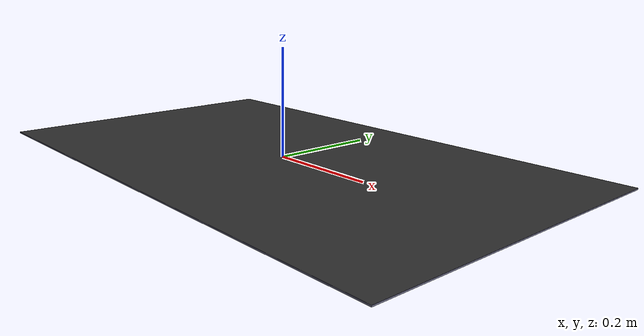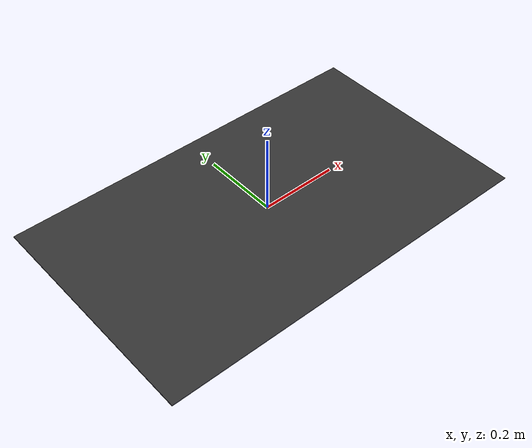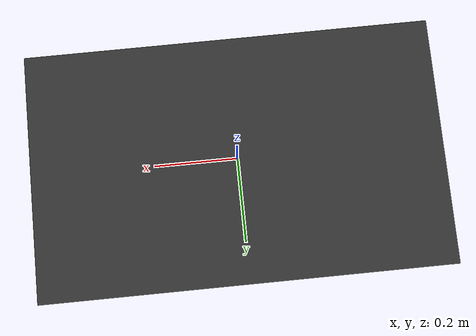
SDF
<?xml version="1.0" ?>
<!--
Pressure sensing mat for humanoid robot testing
This mat detects contact forces and publishes pressure distribution data
-->
<sdf version="1.8">
  <model name="pressure_mat">
    <static>true</static>
    <pose>0 0 0.001 0 0 0</pose>  <!-- 1mm above ground to avoid z-fighting -->

    <link name="mat_base">
      <!-- Main mat collision -->
      <collision name="mat_collision">
        <geometry>
          <box>
            <size>1.0 0.6 0.002</size>  <!-- 1m x 0.6m x 2mm mat -->
          </box>
        </geometry>
        <surface>
          <contact>
            <ode>
              <kp>1e6</kp>  <!-- Contact stiffness -->
              <kd>100</kd>  <!-- Contact damping -->
              <max_vel>0.01</max_vel>
              <min_depth>0.0001</min_depth>
            </ode>
          </contact>
          <friction>
            <ode>
              <mu>1.0</mu>
              <mu2>1.0</mu2>
            </ode>
          </friction>
        </surface>
      </collision>

      <!-- Main mat visual -->
      <visual name="mat_visual">
        <geometry>
          <box>
            <size>1.0 0.6 0.002</size>
          </box>
        </geometry>
        <material>
          <ambient>0.3 0.3 0.4 0.9</ambient>
          <diffuse>0.4 0.4 0.5 0.9</diffuse>
          <specular>0.1 0.1 0.1 1</specular>
        </material>
      </visual>

      <!-- Grid lines for visual reference -->
      <visual name="grid_visual">
        <pose>0 0 0.0015 0 0 0</pose>
        <geometry>
          <box>
            <size>1.0 0.6 0.0001</size>
          </box>
        </geometry>
        <material>
          <ambient>0.2 0.2 0.2 1</ambient>
          <diffuse>0.2 0.2 0.2 1</diffuse>
        </material>
      </visual>

      <!-- Contact sensor for the entire mat -->
      <sensor name="pressure_mat_contact_sensor" type="contact">
        <always_on>true</always_on>
        <update_rate>100.0</update_rate>  <!-- 100 Hz sampling -->
        <contact>
          <collision>mat_collision</collision>
        </contact>
        <plugin filename="gz-sim-contact-system" name="gz::sim::systems::Contact"/>
      </sensor>
    </link>

    <!-- Plugin to publish contact data to ROS -->
    <plugin filename="gz-sim-contact-system" name="gz::sim::systems::Contact">
      <enable>true</enable>
    </plugin>
  </model>
</sdf>
